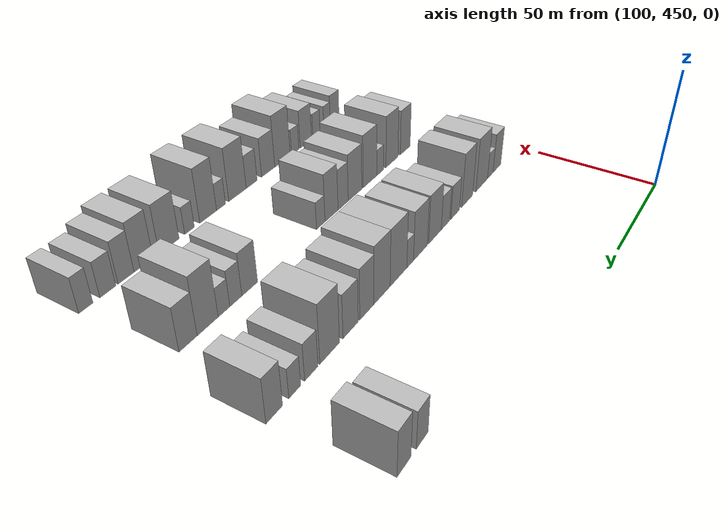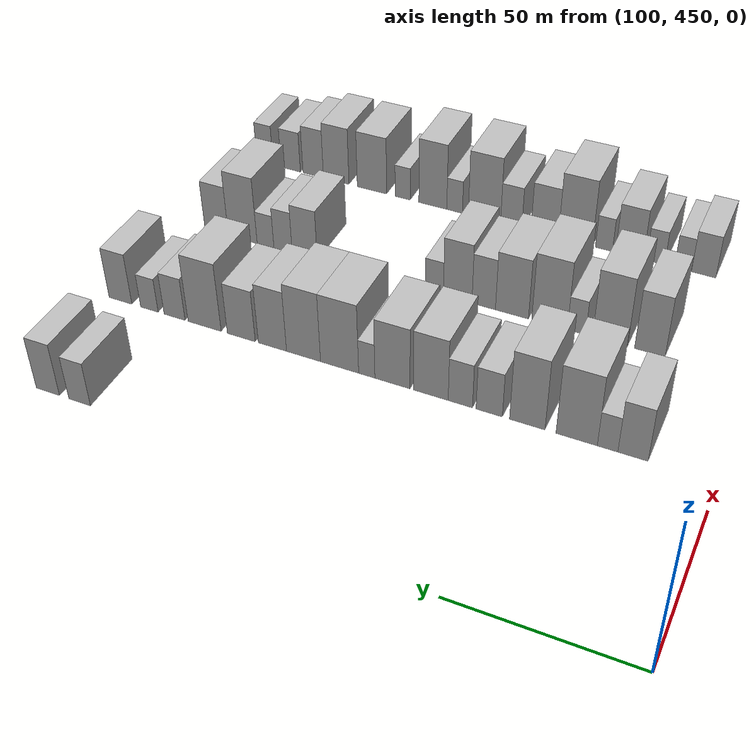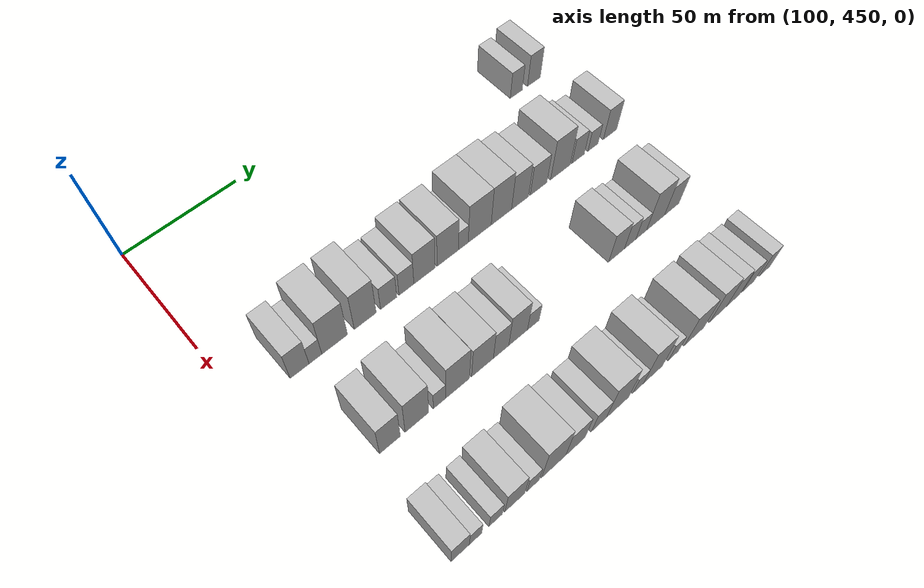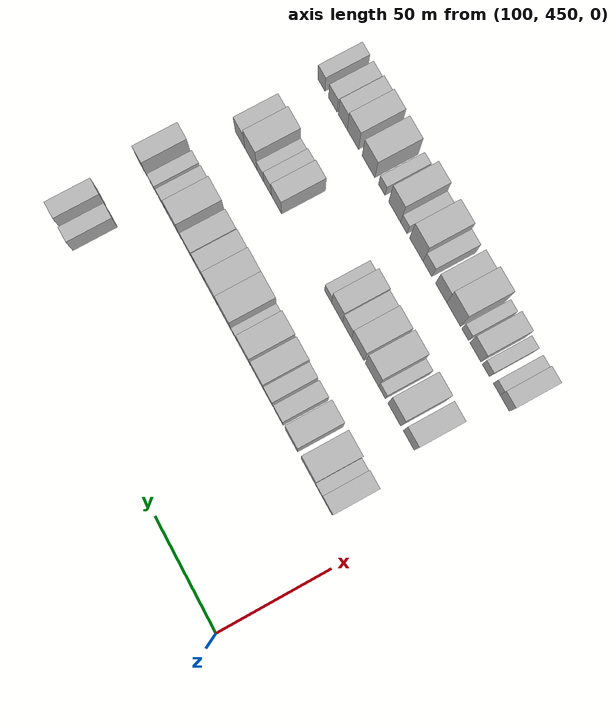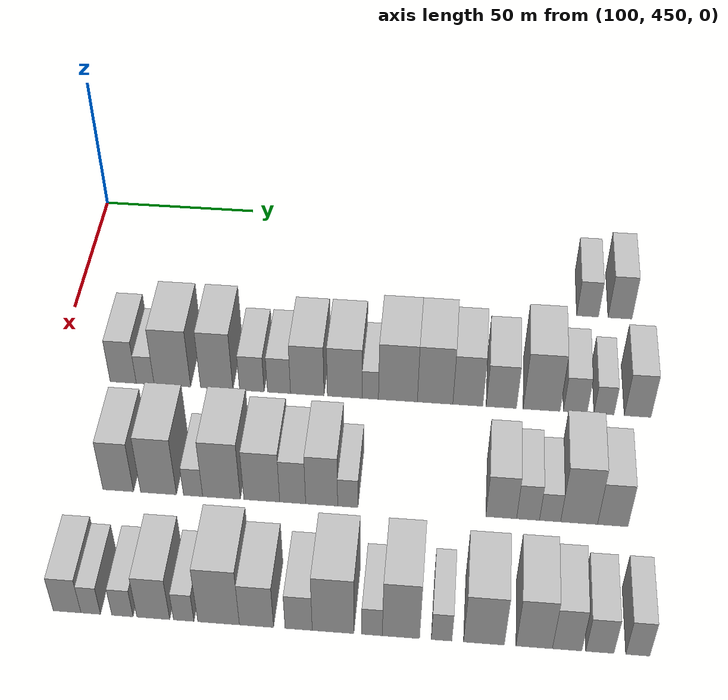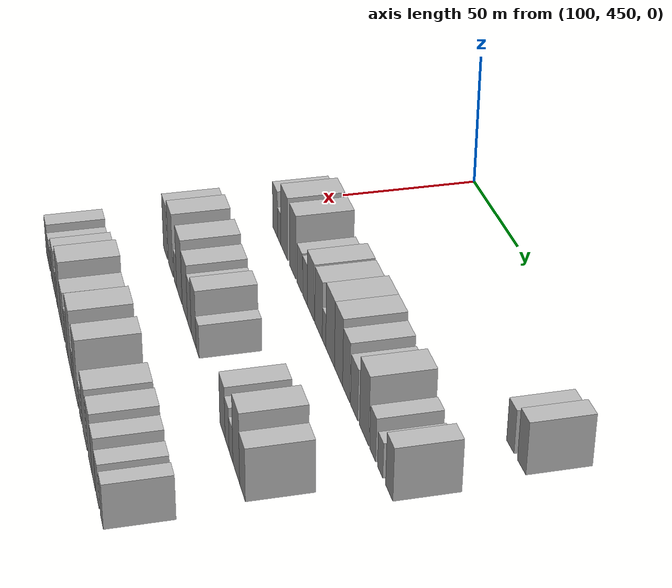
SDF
<sdf version="1.6">
 <world name="default">
  <model name="building_398">
   <static>1</static>
   <pose>130.0000 611.7338 0 0.000000 0.000000 0.000000</pose>
   <link name="link">
    <pose>0 0 7.50 0 0 0</pose>
    <collision name="collision"><geometry><box><size>20.0000 6.8356 15.0000</size></box></geometry></collision>
    <visual name="visual">
     <cast_shadows>0</cast_shadows>
     <geometry><box><size>20.0000 6.8356 15.0000</size></box></geometry>
     <material>
      <script>
       <uri>model://HANNAS_wall/materials/scripts</uri>
       <uri>model://HANNAS_wall/materials/textures</uri>
       <name>vrc/HANNAS_wall</name>
      </script>
     </material>
    </visual>
   </link>
  </model>
  <model name="building_399">
   <static>1</static>
   <pose>130.0000 621.8869 0 0.000000 0.000000 0.000000</pose>
   <link name="link">
    <pose>0 0 9.00 0 0 0</pose>
    <collision name="collision"><geometry><box><size>20.0000 7.4707 18.0000</size></box></geometry></collision>
    <visual name="visual">
     <cast_shadows>0</cast_shadows>
     <geometry><box><size>20.0000 7.4707 18.0000</size></box></geometry>
     <material>
      <script>
       <uri>model://HANNAS_wall/materials/scripts</uri>
       <uri>model://HANNAS_wall/materials/textures</uri>
       <name>vrc/HANNAS_wall</name>
      </script>
     </material>
    </visual>
   </link>
  </model>
  <model name="building_528">
   <static>1</static>
   <pose>170.0000 471.6842 0 0.000000 0.000000 0.000000</pose>
   <link name="link">
    <pose>0 0 9.00 0 0 0</pose>
    <collision name="collision"><geometry><box><size>20.0000 7.9505 18.0000</size></box></geometry></collision>
    <visual name="visual">
     <cast_shadows>0</cast_shadows>
     <geometry><box><size>20.0000 7.9505 18.0000</size></box></geometry>
     <material>
      <script>
       <uri>model://HANNAS_wall/materials/scripts</uri>
       <uri>model://HANNAS_wall/materials/textures</uri>
       <name>vrc/HANNAS_wall</name>
      </script>
     </material>
    </visual>
   </link>
  </model>
  <model name="building_529">
   <static>1</static>
   <pose>170.0000 478.3830 0 0.000000 0.000000 0.000000</pose>
   <link name="link">
    <pose>0 0 6.00 0 0 0</pose>
    <collision name="collision"><geometry><box><size>20.0000 5.4470 12.0000</size></box></geometry></collision>
    <visual name="visual">
     <cast_shadows>0</cast_shadows>
     <geometry><box><size>20.0000 5.4470 12.0000</size></box></geometry>
     <material>
      <script>
       <uri>model://HANNAS_wall/materials/scripts</uri>
       <uri>model://HANNAS_wall/materials/textures</uri>
       <name>vrc/HANNAS_wall</name>
      </script>
     </material>
    </visual>
   </link>
  </model>
  <model name="building_530">
   <static>1</static>
   <pose>170.0000 486.6627 0 0.000000 0.000000 0.000000</pose>
   <link name="link">
    <pose>0 0 12.00 0 0 0</pose>
    <collision name="collision"><geometry><box><size>20.0000 11.1124 24.0000</size></box></geometry></collision>
    <visual name="visual">
     <cast_shadows>0</cast_shadows>
     <geometry><box><size>20.0000 11.1124 24.0000</size></box></geometry>
     <material>
      <script>
       <uri>model://HANNAS_wall/materials/scripts</uri>
       <uri>model://HANNAS_wall/materials/textures</uri>
       <name>vrc/HANNAS_wall</name>
      </script>
     </material>
    </visual>
   </link>
  </model>
  <model name="building_531">
   <static>1</static>
   <pose>170.0000 500.1179 0 0.000000 0.000000 0.000000</pose>
   <link name="link">
    <pose>0 0 12.00 0 0 0</pose>
    <collision name="collision"><geometry><box><size>20.0000 9.7980 24.0000</size></box></geometry></collision>
    <visual name="visual">
     <cast_shadows>0</cast_shadows>
     <geometry><box><size>20.0000 9.7980 24.0000</size></box></geometry>
     <material>
      <script>
       <uri>model://HANNAS_wall/materials/scripts</uri>
       <uri>model://HANNAS_wall/materials/textures</uri>
       <name>vrc/HANNAS_wall</name>
      </script>
     </material>
    </visual>
   </link>
  </model>
  <model name="building_532">
   <static>1</static>
   <pose>170.0000 510.7256 0 0.000000 0.000000 0.000000</pose>
   <link name="link">
    <pose>0 0 7.50 0 0 0</pose>
    <collision name="collision"><geometry><box><size>20.0000 7.4175 15.0000</size></box></geometry></collision>
    <visual name="visual">
     <cast_shadows>0</cast_shadows>
     <geometry><box><size>20.0000 7.4175 15.0000</size></box></geometry>
     <material>
      <script>
       <uri>model://HANNAS_wall/materials/scripts</uri>
       <uri>model://HANNAS_wall/materials/textures</uri>
       <name>vrc/HANNAS_wall</name>
      </script>
     </material>
    </visual>
   </link>
  </model>
  <model name="building_533">
   <static>1</static>
   <pose>170.0000 518.9055 0 0.000000 0.000000 0.000000</pose>
   <link name="link">
    <pose>0 0 7.50 0 0 0</pose>
    <collision name="collision"><geometry><box><size>20.0000 6.9422 15.0000</size></box></geometry></collision>
    <visual name="visual">
     <cast_shadows>0</cast_shadows>
     <geometry><box><size>20.0000 6.9422 15.0000</size></box></geometry>
     <material>
      <script>
       <uri>model://HANNAS_wall/materials/scripts</uri>
       <uri>model://HANNAS_wall/materials/textures</uri>
       <name>vrc/HANNAS_wall</name>
      </script>
     </material>
    </visual>
   </link>
  </model>
  <model name="building_534">
   <static>1</static>
   <pose>170.0000 527.4141 0 0.000000 0.000000 0.000000</pose>
   <link name="link">
    <pose>0 0 10.50 0 0 0</pose>
    <collision name="collision"><geometry><box><size>20.0000 10.0751 21.0000</size></box></geometry></collision>
    <visual name="visual">
     <cast_shadows>0</cast_shadows>
     <geometry><box><size>20.0000 10.0751 21.0000</size></box></geometry>
     <material>
      <script>
       <uri>model://HANNAS_wall/materials/scripts</uri>
       <uri>model://HANNAS_wall/materials/textures</uri>
       <name>vrc/HANNAS_wall</name>
      </script>
     </material>
    </visual>
   </link>
  </model>
  <model name="building_535">
   <static>1</static>
   <pose>170.0000 538.6483 0 0.000000 0.000000 0.000000</pose>
   <link name="link">
    <pose>0 0 10.50 0 0 0</pose>
    <collision name="collision"><geometry><box><size>20.0000 10.3932 21.0000</size></box></geometry></collision>
    <visual name="visual">
     <cast_shadows>0</cast_shadows>
     <geometry><box><size>20.0000 10.3932 21.0000</size></box></geometry>
     <material>
      <script>
       <uri>model://HANNAS_wall/materials/scripts</uri>
       <uri>model://HANNAS_wall/materials/textures</uri>
       <name>vrc/HANNAS_wall</name>
      </script>
     </material>
    </visual>
   </link>
  </model>
  <model name="building_536">
   <static>1</static>
   <pose>170.0000 546.2825 0 0.000000 0.000000 0.000000</pose>
   <link name="link">
    <pose>0 0 6.00 0 0 0</pose>
    <collision name="collision"><geometry><box><size>20.0000 4.8753 12.0000</size></box></geometry></collision>
    <visual name="visual">
     <cast_shadows>0</cast_shadows>
     <geometry><box><size>20.0000 4.8753 12.0000</size></box></geometry>
     <material>
      <script>
       <uri>model://HANNAS_wall/materials/scripts</uri>
       <uri>model://HANNAS_wall/materials/textures</uri>
       <name>vrc/HANNAS_wall</name>
      </script>
     </material>
    </visual>
   </link>
  </model>
  <model name="building_537">
   <static>1</static>
   <pose>170.0000 554.5182 0 0.000000 0.000000 0.000000</pose>
   <link name="link">
    <pose>0 0 12.00 0 0 0</pose>
    <collision name="collision"><geometry><box><size>20.0000 11.5960 24.0000</size></box></geometry></collision>
    <visual name="visual">
     <cast_shadows>0</cast_shadows>
     <geometry><box><size>20.0000 11.5960 24.0000</size></box></geometry>
     <material>
      <script>
       <uri>model://HANNAS_wall/materials/scripts</uri>
       <uri>model://HANNAS_wall/materials/textures</uri>
       <name>vrc/HANNAS_wall</name>
      </script>
     </material>
    </visual>
   </link>
  </model>
  <model name="building_538">
   <static>1</static>
   <pose>170.0000 565.5869 0 0.000000 0.000000 0.000000</pose>
   <link name="link">
    <pose>0 0 12.00 0 0 0</pose>
    <collision name="collision"><geometry><box><size>20.0000 10.5413 24.0000</size></box></geometry></collision>
    <visual name="visual">
     <cast_shadows>0</cast_shadows>
     <geometry><box><size>20.0000 10.5413 24.0000</size></box></geometry>
     <material>
      <script>
       <uri>model://HANNAS_wall/materials/scripts</uri>
       <uri>model://HANNAS_wall/materials/textures</uri>
       <name>vrc/HANNAS_wall</name>
      </script>
     </material>
    </visual>
   </link>
  </model>
  <model name="building_539">
   <static>1</static>
   <pose>170.0000 575.2952 0 0.000000 0.000000 0.000000</pose>
   <link name="link">
    <pose>0 0 10.50 0 0 0</pose>
    <collision name="collision"><geometry><box><size>20.0000 8.8754 21.0000</size></box></geometry></collision>
    <visual name="visual">
     <cast_shadows>0</cast_shadows>
     <geometry><box><size>20.0000 8.8754 21.0000</size></box></geometry>
     <material>
      <script>
       <uri>model://HANNAS_wall/materials/scripts</uri>
       <uri>model://HANNAS_wall/materials/textures</uri>
       <name>vrc/HANNAS_wall</name>
      </script>
     </material>
    </visual>
   </link>
  </model>
  <model name="building_540">
   <static>1</static>
   <pose>170.0000 585.2048 0 0.000000 0.000000 0.000000</pose>
   <link name="link">
    <pose>0 0 9.00 0 0 0</pose>
    <collision name="collision"><geometry><box><size>20.0000 8.9437 18.0000</size></box></geometry></collision>
    <visual name="visual">
     <cast_shadows>0</cast_shadows>
     <geometry><box><size>20.0000 8.9437 18.0000</size></box></geometry>
     <material>
      <script>
       <uri>model://HANNAS_wall/materials/scripts</uri>
       <uri>model://HANNAS_wall/materials/textures</uri>
       <name>vrc/HANNAS_wall</name>
      </script>
     </material>
    </visual>
   </link>
  </model>
  <model name="building_541">
   <static>1</static>
   <pose>170.0000 597.0909 0 0.000000 0.000000 0.000000</pose>
   <link name="link">
    <pose>0 0 12.00 0 0 0</pose>
    <collision name="collision"><geometry><box><size>20.0000 10.8286 24.0000</size></box></geometry></collision>
    <visual name="visual">
     <cast_shadows>0</cast_shadows>
     <geometry><box><size>20.0000 10.8286 24.0000</size></box></geometry>
     <material>
      <script>
       <uri>model://HANNAS_wall/materials/scripts</uri>
       <uri>model://HANNAS_wall/materials/textures</uri>
       <name>vrc/HANNAS_wall</name>
      </script>
     </material>
    </visual>
   </link>
  </model>
  <model name="building_542">
   <static>1</static>
   <pose>170.0000 606.9902 0 0.000000 0.000000 0.000000</pose>
   <link name="link">
    <pose>0 0 7.50 0 0 0</pose>
    <collision name="collision"><geometry><box><size>20.0000 6.9700 15.0000</size></box></geometry></collision>
    <visual name="visual">
     <cast_shadows>0</cast_shadows>
     <geometry><box><size>20.0000 6.9700 15.0000</size></box></geometry>
     <material>
      <script>
       <uri>model://HANNAS_wall/materials/scripts</uri>
       <uri>model://HANNAS_wall/materials/textures</uri>
       <name>vrc/HANNAS_wall</name>
      </script>
     </material>
    </visual>
   </link>
  </model>
  <model name="building_543">
   <static>1</static>
   <pose>170.0000 615.4217 0 0.000000 0.000000 0.000000</pose>
   <link name="link">
    <pose>0 0 6.00 0 0 0</pose>
    <collision name="collision"><geometry><box><size>20.0000 5.8931 12.0000</size></box></geometry></collision>
    <visual name="visual">
     <cast_shadows>0</cast_shadows>
     <geometry><box><size>20.0000 5.8931 12.0000</size></box></geometry>
     <material>
      <script>
       <uri>model://HANNAS_wall/materials/scripts</uri>
       <uri>model://HANNAS_wall/materials/textures</uri>
       <name>vrc/HANNAS_wall</name>
      </script>
     </material>
    </visual>
   </link>
  </model>
  <model name="building_544">
   <static>1</static>
   <pose>170.0000 625.2713 0 0.000000 0.000000 0.000000</pose>
   <link name="link">
    <pose>0 0 9.00 0 0 0</pose>
    <collision name="collision"><geometry><box><size>20.0000 7.8060 18.0000</size></box></geometry></collision>
    <visual name="visual">
     <cast_shadows>0</cast_shadows>
     <geometry><box><size>20.0000 7.8060 18.0000</size></box></geometry>
     <material>
      <script>
       <uri>model://HANNAS_wall/materials/scripts</uri>
       <uri>model://HANNAS_wall/materials/textures</uri>
       <name>vrc/HANNAS_wall</name>
      </script>
     </material>
    </visual>
   </link>
  </model>
  <model name="building_660">
   <static>1</static>
   <pose>210.0000 478.3782 0 0.000000 0.000000 0.000000</pose>
   <link name="link">
    <pose>0 0 10.50 0 0 0</pose>
    <collision name="collision"><geometry><box><size>20.0000 8.7289 21.0000</size></box></geometry></collision>
    <visual name="visual">
     <cast_shadows>0</cast_shadows>
     <geometry><box><size>20.0000 8.7289 21.0000</size></box></geometry>
     <material>
      <script>
       <uri>model://HANNAS_wall/materials/scripts</uri>
       <uri>model://HANNAS_wall/materials/textures</uri>
       <name>vrc/HANNAS_wall</name>
      </script>
     </material>
    </visual>
   </link>
  </model>
  <model name="building_661">
   <static>1</static>
   <pose>210.0000 489.8308 0 0.000000 0.000000 0.000000</pose>
   <link name="link">
    <pose>0 0 12.00 0 0 0</pose>
    <collision name="collision"><geometry><box><size>20.0000 10.1763 24.0000</size></box></geometry></collision>
    <visual name="visual">
     <cast_shadows>0</cast_shadows>
     <geometry><box><size>20.0000 10.1763 24.0000</size></box></geometry>
     <material>
      <script>
       <uri>model://HANNAS_wall/materials/scripts</uri>
       <uri>model://HANNAS_wall/materials/textures</uri>
       <name>vrc/HANNAS_wall</name>
      </script>
     </material>
    </visual>
   </link>
  </model>
  <model name="building_662">
   <static>1</static>
   <pose>210.0000 499.6337 0 0.000000 0.000000 0.000000</pose>
   <link name="link">
    <pose>0 0 6.00 0 0 0</pose>
    <collision name="collision"><geometry><box><size>20.0000 5.4295 12.0000</size></box></geometry></collision>
    <visual name="visual">
     <cast_shadows>0</cast_shadows>
     <geometry><box><size>20.0000 5.4295 12.0000</size></box></geometry>
     <material>
      <script>
       <uri>model://HANNAS_wall/materials/scripts</uri>
       <uri>model://HANNAS_wall/materials/textures</uri>
       <name>vrc/HANNAS_wall</name>
      </script>
     </material>
    </visual>
   </link>
  </model>
  <model name="building_663">
   <static>1</static>
   <pose>210.0000 507.6728 0 0.000000 0.000000 0.000000</pose>
   <link name="link">
    <pose>0 0 12.00 0 0 0</pose>
    <collision name="collision"><geometry><box><size>20.0000 10.6486 24.0000</size></box></geometry></collision>
    <visual name="visual">
     <cast_shadows>0</cast_shadows>
     <geometry><box><size>20.0000 10.6486 24.0000</size></box></geometry>
     <material>
      <script>
       <uri>model://HANNAS_wall/materials/scripts</uri>
       <uri>model://HANNAS_wall/materials/textures</uri>
       <name>vrc/HANNAS_wall</name>
      </script>
     </material>
    </visual>
   </link>
  </model>
  <model name="building_664">
   <static>1</static>
   <pose>210.0000 519.0333 0 0.000000 0.000000 0.000000</pose>
   <link name="link">
    <pose>0 0 10.50 0 0 0</pose>
    <collision name="collision"><geometry><box><size>20.0000 10.0725 21.0000</size></box></geometry></collision>
    <visual name="visual">
     <cast_shadows>0</cast_shadows>
     <geometry><box><size>20.0000 10.0725 21.0000</size></box></geometry>
     <material>
      <script>
       <uri>model://HANNAS_wall/materials/scripts</uri>
       <uri>model://HANNAS_wall/materials/textures</uri>
       <name>vrc/HANNAS_wall</name>
      </script>
     </material>
    </visual>
   </link>
  </model>
  <model name="building_665">
   <static>1</static>
   <pose>210.0000 527.7075 0 0.000000 0.000000 0.000000</pose>
   <link name="link">
    <pose>0 0 9.00 0 0 0</pose>
    <collision name="collision"><geometry><box><size>20.0000 7.2758 18.0000</size></box></geometry></collision>
    <visual name="visual">
     <cast_shadows>0</cast_shadows>
     <geometry><box><size>20.0000 7.2758 18.0000</size></box></geometry>
     <material>
      <script>
       <uri>model://HANNAS_wall/materials/scripts</uri>
       <uri>model://HANNAS_wall/materials/textures</uri>
       <name>vrc/HANNAS_wall</name>
      </script>
     </material>
    </visual>
   </link>
  </model>
  <model name="building_666">
   <static>1</static>
   <pose>210.0000 535.8245 0 0.000000 0.000000 0.000000</pose>
   <link name="link">
    <pose>0 0 10.50 0 0 0</pose>
    <collision name="collision"><geometry><box><size>20.0000 8.9584 21.0000</size></box></geometry></collision>
    <visual name="visual">
     <cast_shadows>0</cast_shadows>
     <geometry><box><size>20.0000 8.9584 21.0000</size></box></geometry>
     <material>
      <script>
       <uri>model://HANNAS_wall/materials/scripts</uri>
       <uri>model://HANNAS_wall/materials/textures</uri>
       <name>vrc/HANNAS_wall</name>
      </script>
     </material>
    </visual>
   </link>
  </model>
  <model name="building_667">
   <static>1</static>
   <pose>210.0000 543.1576 0 0.000000 0.000000 0.000000</pose>
   <link name="link">
    <pose>0 0 6.00 0 0 0</pose>
    <collision name="collision"><geometry><box><size>20.0000 5.7077 12.0000</size></box></geometry></collision>
    <visual name="visual">
     <cast_shadows>0</cast_shadows>
     <geometry><box><size>20.0000 5.7077 12.0000</size></box></geometry>
     <material>
      <script>
       <uri>model://HANNAS_wall/materials/scripts</uri>
       <uri>model://HANNAS_wall/materials/textures</uri>
       <name>vrc/HANNAS_wall</name>
      </script>
     </material>
    </visual>
   </link>
  </model>
  <model name="building_668">
   <static>1</static>
   <pose>210.0000 585.7442 0 0.000000 0.000000 0.000000</pose>
   <link name="link">
    <pose>0 0 9.00 0 0 0</pose>
    <collision name="collision"><geometry><box><size>20.0000 8.4885 18.0000</size></box></geometry></collision>
    <visual name="visual">
     <cast_shadows>0</cast_shadows>
     <geometry><box><size>20.0000 8.4885 18.0000</size></box></geometry>
     <material>
      <script>
       <uri>model://HANNAS_wall/materials/scripts</uri>
       <uri>model://HANNAS_wall/materials/textures</uri>
       <name>vrc/HANNAS_wall</name>
      </script>
     </material>
    </visual>
   </link>
  </model>
  <model name="building_669">
   <static>1</static>
   <pose>210.0000 593.1350 0 0.000000 0.000000 0.000000</pose>
   <link name="link">
    <pose>0 0 7.50 0 0 0</pose>
    <collision name="collision"><geometry><box><size>20.0000 6.2931 15.0000</size></box></geometry></collision>
    <visual name="visual">
     <cast_shadows>0</cast_shadows>
     <geometry><box><size>20.0000 6.2931 15.0000</size></box></geometry>
     <material>
      <script>
       <uri>model://HANNAS_wall/materials/scripts</uri>
       <uri>model://HANNAS_wall/materials/textures</uri>
       <name>vrc/HANNAS_wall</name>
      </script>
     </material>
    </visual>
   </link>
  </model>
  <model name="building_670">
   <static>1</static>
   <pose>210.0000 599.1890 0 0.000000 0.000000 0.000000</pose>
   <link name="link">
    <pose>0 0 6.00 0 0 0</pose>
    <collision name="collision"><geometry><box><size>20.0000 5.8147 12.0000</size></box></geometry></collision>
    <visual name="visual">
     <cast_shadows>0</cast_shadows>
     <geometry><box><size>20.0000 5.8147 12.0000</size></box></geometry>
     <material>
      <script>
       <uri>model://HANNAS_wall/materials/scripts</uri>
       <uri>model://HANNAS_wall/materials/textures</uri>
       <name>vrc/HANNAS_wall</name>
      </script>
     </material>
    </visual>
   </link>
  </model>
  <model name="building_671">
   <static>1</static>
   <pose>210.0000 607.1502 0 0.000000 0.000000 0.000000</pose>
   <link name="link">
    <pose>0 0 12.00 0 0 0</pose>
    <collision name="collision"><geometry><box><size>20.0000 10.1077 24.0000</size></box></geometry></collision>
    <visual name="visual">
     <cast_shadows>0</cast_shadows>
     <geometry><box><size>20.0000 10.1077 24.0000</size></box></geometry>
     <material>
      <script>
       <uri>model://HANNAS_wall/materials/scripts</uri>
       <uri>model://HANNAS_wall/materials/textures</uri>
       <name>vrc/HANNAS_wall</name>
      </script>
     </material>
    </visual>
   </link>
  </model>
  <model name="building_672">
   <static>1</static>
   <pose>210.0000 616.3659 0 0.000000 0.000000 0.000000</pose>
   <link name="link">
    <pose>0 0 9.00 0 0 0</pose>
    <collision name="collision"><geometry><box><size>20.0000 8.3237 18.0000</size></box></geometry></collision>
    <visual name="visual">
     <cast_shadows>0</cast_shadows>
     <geometry><box><size>20.0000 8.3237 18.0000</size></box></geometry>
     <material>
      <script>
       <uri>model://HANNAS_wall/materials/scripts</uri>
       <uri>model://HANNAS_wall/materials/textures</uri>
       <name>vrc/HANNAS_wall</name>
      </script>
     </material>
    </visual>
   </link>
  </model>
  <model name="building_799">
   <static>1</static>
   <pose>250.0000 473.0041 0 0.000000 0.000000 0.000000</pose>
   <link name="link">
    <pose>0 0 7.50 0 0 0</pose>
    <collision name="collision"><geometry><box><size>20.0000 7.3570 15.0000</size></box></geometry></collision>
    <visual name="visual">
     <cast_shadows>0</cast_shadows>
     <geometry><box><size>20.0000 7.3570 15.0000</size></box></geometry>
     <material>
      <script>
       <uri>model://HANNAS_wall/materials/scripts</uri>
       <uri>model://HANNAS_wall/materials/textures</uri>
       <name>vrc/HANNAS_wall</name>
      </script>
     </material>
    </visual>
   </link>
  </model>
  <model name="building_800">
   <static>1</static>
   <pose>250.0000 479.2758 0 0.000000 0.000000 0.000000</pose>
   <link name="link">
    <pose>0 0 6.00 0 0 0</pose>
    <collision name="collision"><geometry><box><size>20.0000 5.1864 12.0000</size></box></geometry></collision>
    <visual name="visual">
     <cast_shadows>0</cast_shadows>
     <geometry><box><size>20.0000 5.1864 12.0000</size></box></geometry>
     <material>
      <script>
       <uri>model://HANNAS_wall/materials/scripts</uri>
       <uri>model://HANNAS_wall/materials/textures</uri>
       <name>vrc/HANNAS_wall</name>
      </script>
     </material>
    </visual>
   </link>
  </model>
  <model name="building_801">
   <static>1</static>
   <pose>250.0000 487.6863 0 0.000000 0.000000 0.000000</pose>
   <link name="link">
    <pose>0 0 6.00 0 0 0</pose>
    <collision name="collision"><geometry><box><size>20.0000 5.6346 12.0000</size></box></geometry></collision>
    <visual name="visual">
     <cast_shadows>0</cast_shadows>
     <geometry><box><size>20.0000 5.6346 12.0000</size></box></geometry>
     <material>
      <script>
       <uri>model://HANNAS_wall/materials/scripts</uri>
       <uri>model://HANNAS_wall/materials/textures</uri>
       <name>vrc/HANNAS_wall</name>
      </script>
     </material>
    </visual>
   </link>
  </model>
  <model name="building_802">
   <static>1</static>
   <pose>250.0000 495.8411 0 0.000000 0.000000 0.000000</pose>
   <link name="link">
    <pose>0 0 9.00 0 0 0</pose>
    <collision name="collision"><geometry><box><size>20.0000 8.6750 18.0000</size></box></geometry></collision>
    <visual name="visual">
     <cast_shadows>0</cast_shadows>
     <geometry><box><size>20.0000 8.6750 18.0000</size></box></geometry>
     <material>
      <script>
       <uri>model://HANNAS_wall/materials/scripts</uri>
       <uri>model://HANNAS_wall/materials/textures</uri>
       <name>vrc/HANNAS_wall</name>
      </script>
     </material>
    </visual>
   </link>
  </model>
  <model name="building_803">
   <static>1</static>
   <pose>250.0000 503.8677 0 0.000000 0.000000 0.000000</pose>
   <link name="link">
    <pose>0 0 6.00 0 0 0</pose>
    <collision name="collision"><geometry><box><size>20.0000 5.3783 12.0000</size></box></geometry></collision>
    <visual name="visual">
     <cast_shadows>0</cast_shadows>
     <geometry><box><size>20.0000 5.3783 12.0000</size></box></geometry>
     <material>
      <script>
       <uri>model://HANNAS_wall/materials/scripts</uri>
       <uri>model://HANNAS_wall/materials/textures</uri>
       <name>vrc/HANNAS_wall</name>
      </script>
     </material>
    </visual>
   </link>
  </model>
  <model name="building_804">
   <static>1</static>
   <pose>250.0000 513.0235 0 0.000000 0.000000 0.000000</pose>
   <link name="link">
    <pose>0 0 12.00 0 0 0</pose>
    <collision name="collision"><geometry><box><size>20.0000 10.9333 24.0000</size></box></geometry></collision>
    <visual name="visual">
     <cast_shadows>0</cast_shadows>
     <geometry><box><size>20.0000 10.9333 24.0000</size></box></geometry>
     <material>
      <script>
       <uri>model://HANNAS_wall/materials/scripts</uri>
       <uri>model://HANNAS_wall/materials/textures</uri>
       <name>vrc/HANNAS_wall</name>
      </script>
     </material>
    </visual>
   </link>
  </model>
  <model name="building_805">
   <static>1</static>
   <pose>250.0000 522.9550 0 0.000000 0.000000 0.000000</pose>
   <link name="link">
    <pose>0 0 9.00 0 0 0</pose>
    <collision name="collision"><geometry><box><size>20.0000 8.9296 18.0000</size></box></geometry></collision>
    <visual name="visual">
     <cast_shadows>0</cast_shadows>
     <geometry><box><size>20.0000 8.9296 18.0000</size></box></geometry>
     <material>
      <script>
       <uri>model://HANNAS_wall/materials/scripts</uri>
       <uri>model://HANNAS_wall/materials/textures</uri>
       <name>vrc/HANNAS_wall</name>
      </script>
     </material>
    </visual>
   </link>
  </model>
  <model name="building_806">
   <static>1</static>
   <pose>250.0000 533.9567 0 0.000000 0.000000 0.000000</pose>
   <link name="link">
    <pose>0 0 7.50 0 0 0</pose>
    <collision name="collision"><geometry><box><size>20.0000 7.0738 15.0000</size></box></geometry></collision>
    <visual name="visual">
     <cast_shadows>0</cast_shadows>
     <geometry><box><size>20.0000 7.0738 15.0000</size></box></geometry>
     <material>
      <script>
       <uri>model://HANNAS_wall/materials/scripts</uri>
       <uri>model://HANNAS_wall/materials/textures</uri>
       <name>vrc/HANNAS_wall</name>
      </script>
     </material>
    </visual>
   </link>
  </model>
  <model name="building_807">
   <static>1</static>
   <pose>250.0000 542.9097 0 0.000000 0.000000 0.000000</pose>
   <link name="link">
    <pose>0 0 12.00 0 0 0</pose>
    <collision name="collision"><geometry><box><size>20.0000 10.8323 24.0000</size></box></geometry></collision>
    <visual name="visual">
     <cast_shadows>0</cast_shadows>
     <geometry><box><size>20.0000 10.8323 24.0000</size></box></geometry>
     <material>
      <script>
       <uri>model://HANNAS_wall/materials/scripts</uri>
       <uri>model://HANNAS_wall/materials/textures</uri>
       <name>vrc/HANNAS_wall</name>
      </script>
     </material>
    </visual>
   </link>
  </model>
  <model name="building_808">
   <static>1</static>
   <pose>250.0000 552.9994 0 0.000000 0.000000 0.000000</pose>
   <link name="link">
    <pose>0 0 6.00 0 0 0</pose>
    <collision name="collision"><geometry><box><size>20.0000 5.3470 12.0000</size></box></geometry></collision>
    <visual name="visual">
     <cast_shadows>0</cast_shadows>
     <geometry><box><size>20.0000 5.3470 12.0000</size></box></geometry>
     <material>
      <script>
       <uri>model://HANNAS_wall/materials/scripts</uri>
       <uri>model://HANNAS_wall/materials/textures</uri>
       <name>vrc/HANNAS_wall</name>
      </script>
     </material>
    </visual>
   </link>
  </model>
  <model name="building_809">
   <static>1</static>
   <pose>250.0000 560.4952 0 0.000000 0.000000 0.000000</pose>
   <link name="link">
    <pose>0 0 12.00 0 0 0</pose>
    <collision name="collision"><geometry><box><size>20.0000 9.6446 24.0000</size></box></geometry></collision>
    <visual name="visual">
     <cast_shadows>0</cast_shadows>
     <geometry><box><size>20.0000 9.6446 24.0000</size></box></geometry>
     <material>
      <script>
       <uri>model://HANNAS_wall/materials/scripts</uri>
       <uri>model://HANNAS_wall/materials/textures</uri>
       <name>vrc/HANNAS_wall</name>
      </script>
     </material>
    </visual>
   </link>
  </model>
  <model name="building_810">
   <static>1</static>
   <pose>250.0000 570.9731 0 0.000000 0.000000 0.000000</pose>
   <link name="link">
    <pose>0 0 6.00 0 0 0</pose>
    <collision name="collision"><geometry><box><size>20.0000 5.3110 12.0000</size></box></geometry></collision>
    <visual name="visual">
     <cast_shadows>0</cast_shadows>
     <geometry><box><size>20.0000 5.3110 12.0000</size></box></geometry>
     <material>
      <script>
       <uri>model://HANNAS_wall/materials/scripts</uri>
       <uri>model://HANNAS_wall/materials/textures</uri>
       <name>vrc/HANNAS_wall</name>
      </script>
     </material>
    </visual>
   </link>
  </model>
  <model name="building_811">
   <static>1</static>
   <pose>250.0000 581.8616 0 0.000000 0.000000 0.000000</pose>
   <link name="link">
    <pose>0 0 10.50 0 0 0</pose>
    <collision name="collision"><geometry><box><size>20.0000 10.4660 21.0000</size></box></geometry></collision>
    <visual name="visual">
     <cast_shadows>0</cast_shadows>
     <geometry><box><size>20.0000 10.4660 21.0000</size></box></geometry>
     <material>
      <script>
       <uri>model://HANNAS_wall/materials/scripts</uri>
       <uri>model://HANNAS_wall/materials/textures</uri>
       <name>vrc/HANNAS_wall</name>
      </script>
     </material>
    </visual>
   </link>
  </model>
  <model name="building_812">
   <static>1</static>
   <pose>250.0000 594.7448 0 0.000000 0.000000 0.000000</pose>
   <link name="link">
    <pose>0 0 10.50 0 0 0</pose>
    <collision name="collision"><geometry><box><size>20.0000 9.3003 21.0000</size></box></geometry></collision>
    <visual name="visual">
     <cast_shadows>0</cast_shadows>
     <geometry><box><size>20.0000 9.3003 21.0000</size></box></geometry>
     <material>
      <script>
       <uri>model://HANNAS_wall/materials/scripts</uri>
       <uri>model://HANNAS_wall/materials/textures</uri>
       <name>vrc/HANNAS_wall</name>
      </script>
     </material>
    </visual>
   </link>
  </model>
  <model name="building_813">
   <static>1</static>
   <pose>250.0000 603.1463 0 0.000000 0.000000 0.000000</pose>
   <link name="link">
    <pose>0 0 9.00 0 0 0</pose>
    <collision name="collision"><geometry><box><size>20.0000 7.5029 18.0000</size></box></geometry></collision>
    <visual name="visual">
     <cast_shadows>0</cast_shadows>
     <geometry><box><size>20.0000 7.5029 18.0000</size></box></geometry>
     <material>
      <script>
       <uri>model://HANNAS_wall/materials/scripts</uri>
       <uri>model://HANNAS_wall/materials/textures</uri>
       <name>vrc/HANNAS_wall</name>
      </script>
     </material>
    </visual>
   </link>
  </model>
  <model name="building_814">
   <static>1</static>
   <pose>250.0000 611.4772 0 0.000000 0.000000 0.000000</pose>
   <link name="link">
    <pose>0 0 7.50 0 0 0</pose>
    <collision name="collision"><geometry><box><size>20.0000 7.1588 15.0000</size></box></geometry></collision>
    <visual name="visual">
     <cast_shadows>0</cast_shadows>
     <geometry><box><size>20.0000 7.1588 15.0000</size></box></geometry>
     <material>
      <script>
       <uri>model://HANNAS_wall/materials/scripts</uri>
       <uri>model://HANNAS_wall/materials/textures</uri>
       <name>vrc/HANNAS_wall</name>
      </script>
     </material>
    </visual>
   </link>
  </model>
  <model name="building_815">
   <static>1</static>
   <pose>250.0000 621.1023 0 0.000000 0.000000 0.000000</pose>
   <link name="link">
    <pose>0 0 7.50 0 0 0</pose>
    <collision name="collision"><geometry><box><size>20.0000 6.0913 15.0000</size></box></geometry></collision>
    <visual name="visual">
     <cast_shadows>0</cast_shadows>
     <geometry><box><size>20.0000 6.0913 15.0000</size></box></geometry>
     <material>
      <script>
       <uri>model://HANNAS_wall/materials/scripts</uri>
       <uri>model://HANNAS_wall/materials/textures</uri>
       <name>vrc/HANNAS_wall</name>
      </script>
     </material>
    </visual>
   </link>
  </model>
 </world>
</sdf>
